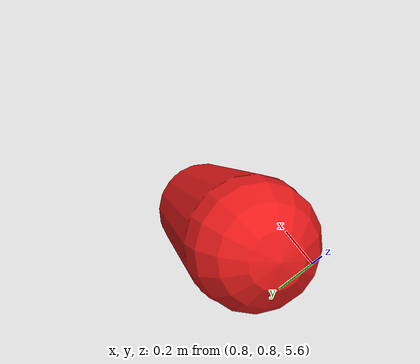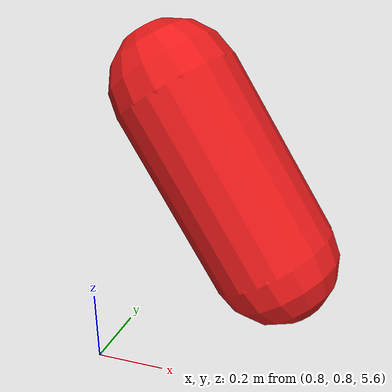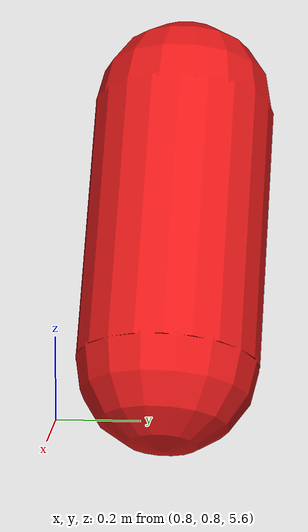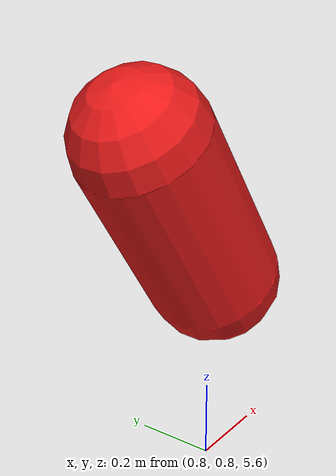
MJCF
<mujoco model="Humanoid and 100 objects">
    <compiler angle="degree"/>

    <option timestep="0.01" iterations="50" solver="PGS" jacobian="sparse" cone="elliptic" tolerance="1e-10"/>

    <size njmax="5000" nconmax="2000" nstack="1000000000"/>

    <default>
        <geom solimp=".9 .9 .01"/>

        <default class="object5">
			<geom type="capsule" material="geom" rgba=".9 .1 .1 1" size="0.200000 0.300000"/>
        </default>
    </default>

    <asset>
        <texture type="skybox" builtin="gradient" width="128" height="128" rgb1=".4 .6 .8" rgb2="0 0 0"/>
        <texture name="texgeom" type="cube" builtin="flat" mark="cross" width="128" height="128"
            rgb1="0.6 0.6 0.6" rgb2="0.6 0.6 0.6" markrgb="1 1 1"/>
        <texture name="texplane" type="2d" builtin="checker" rgb1=".4 .4 .4" rgb2=".6 .6 .6"
            width="512" height="512"/>
        <material name='geom' texture="texgeom" texuniform="true"/>
        <material name='MatPlane' reflectance='0.3' texture="texplane" texrepeat="1 1" texuniform="true"/>
    </asset>

    <visual>
        <quality shadowsize="4096" offsamples="8"/>
        <map znear="0.1" force="0.05"/>
    </visual>

    <statistic extent="4"/>

    <worldbody>
        <light directional="true" diffuse=".8 .8 .8" pos="0 0 10" dir="0 0 -10"/>

        <geom pos="0 0 0" type="plane" size="3 3 .5" rgba=".7 .7 .7 1" material="MatPlane"/>
		<body pos="1.100945 1.100305 6.100489" quat="0.137443 0.859079 0.432913 0.235965"> <freejoint/> <geom class="object5"/> </body>

    </worldbody>
</mujoco>
